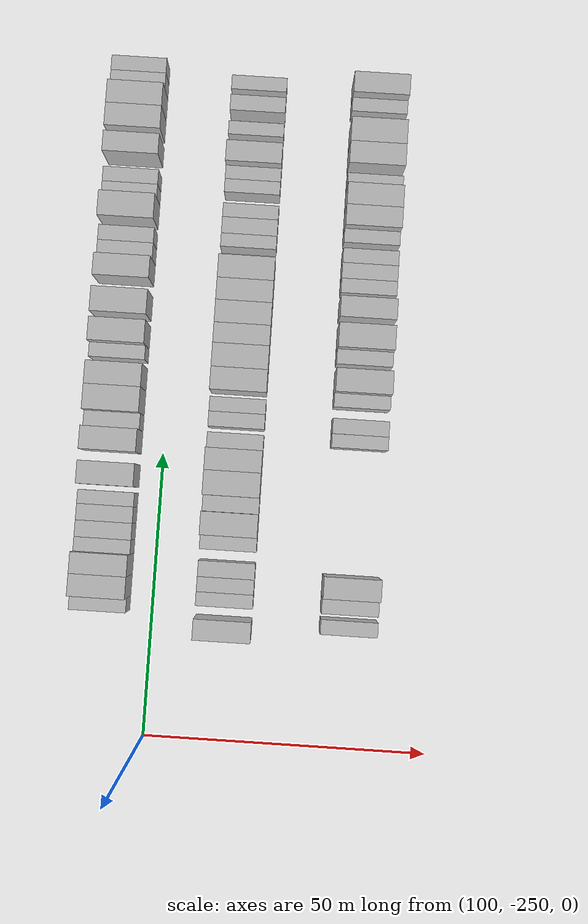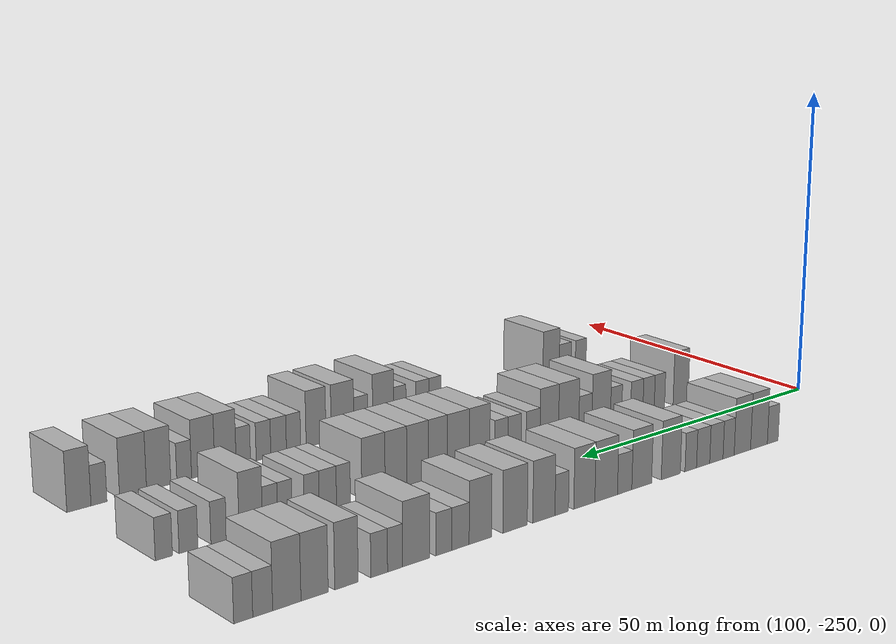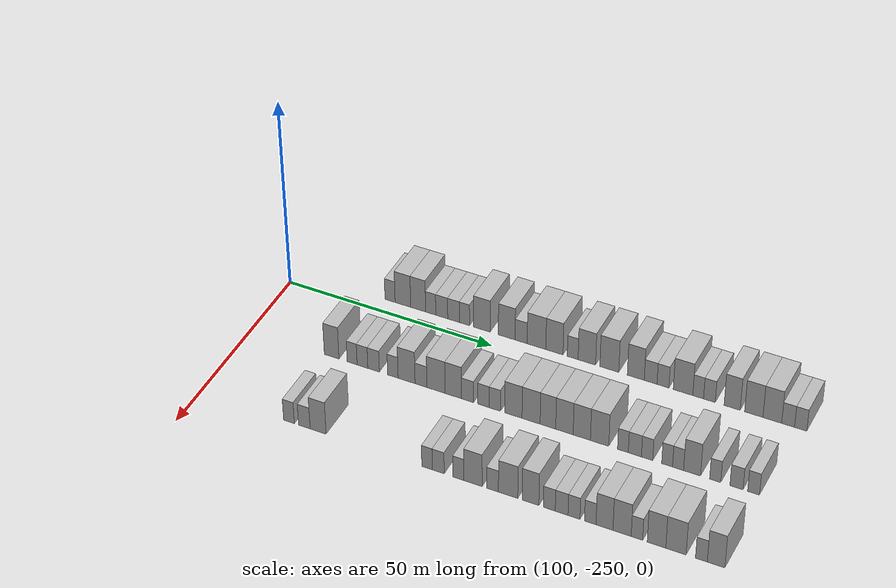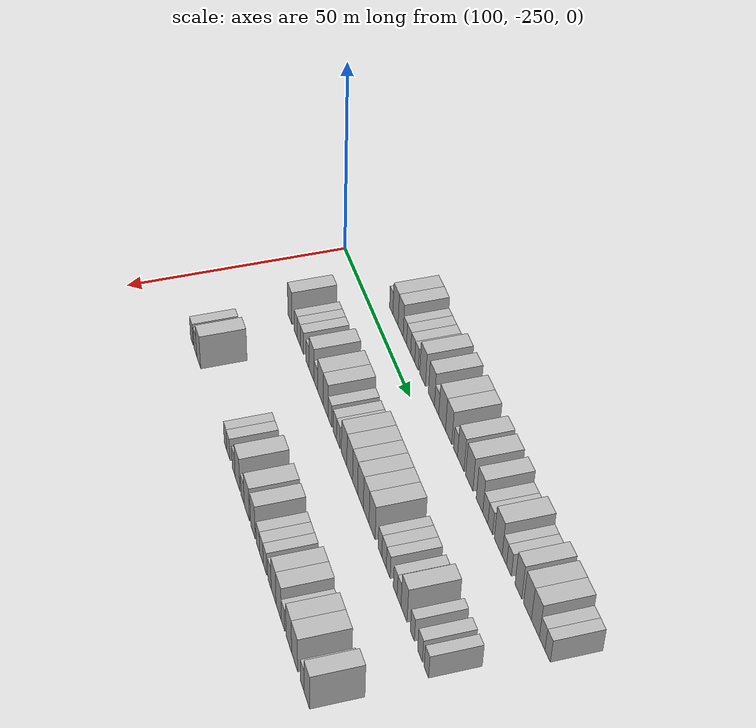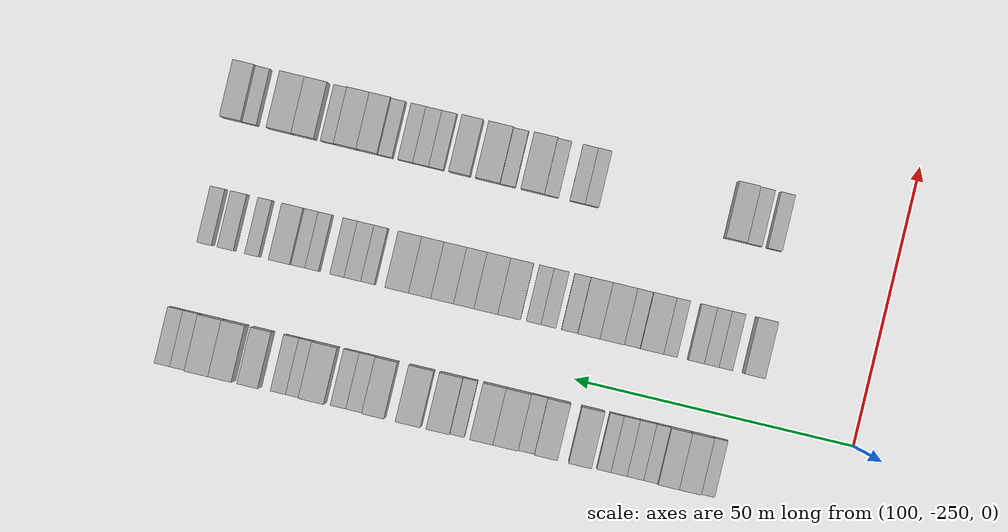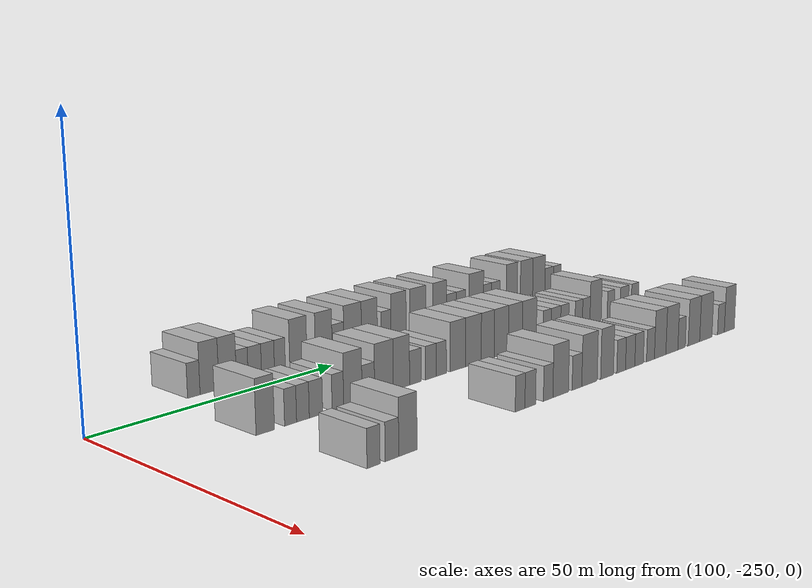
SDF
<sdf version="1.6">
 <world name="default">
  <model name="building_594">
   <static>1</static>
   <pose>91.0000 -226.9265 0 0.000000 0.000000 0.000000</pose>
   <link name="link">
    <pose>0 0 3.00 0 0 0</pose>
    <collision name="collision"><geometry><box><size>10.0000 2.5235 6.0000</size></box></geometry></collision>
    <visual name="visual">
     <cast_shadows>0</cast_shadows>
     <geometry><box><size>10.0000 2.5235 6.0000</size></box></geometry>
     <material>
      <script>
       <uri>model://HANNAS_wall/materials/scripts</uri>
       <uri>model://HANNAS_wall/materials/textures</uri>
       <name>vrc/HANNAS_wall</name>
      </script>
     </material>
    </visual>
   </link>
  </model>
  <model name="building_595">
   <static>1</static>
   <pose>91.0000 -223.7272 0 0.000000 0.000000 0.000000</pose>
   <link name="link">
    <pose>0 0 4.50 0 0 0</pose>
    <collision name="collision"><geometry><box><size>10.0000 3.8752 9.0000</size></box></geometry></collision>
    <visual name="visual">
     <cast_shadows>0</cast_shadows>
     <geometry><box><size>10.0000 3.8752 9.0000</size></box></geometry>
     <material>
      <script>
       <uri>model://HANNAS_wall/materials/scripts</uri>
       <uri>model://HANNAS_wall/materials/textures</uri>
       <name>vrc/HANNAS_wall</name>
      </script>
     </material>
    </visual>
   </link>
  </model>
  <model name="building_596">
   <static>1</static>
   <pose>91.0000 -219.9302 0 0.000000 0.000000 0.000000</pose>
   <link name="link">
    <pose>0 0 4.50 0 0 0</pose>
    <collision name="collision"><geometry><box><size>10.0000 3.7187 9.0000</size></box></geometry></collision>
    <visual name="visual">
     <cast_shadows>0</cast_shadows>
     <geometry><box><size>10.0000 3.7187 9.0000</size></box></geometry>
     <material>
      <script>
       <uri>model://HANNAS_wall/materials/scripts</uri>
       <uri>model://HANNAS_wall/materials/textures</uri>
       <name>vrc/HANNAS_wall</name>
      </script>
     </material>
    </visual>
   </link>
  </model>
  <model name="building_597">
   <static>1</static>
   <pose>91.0000 -216.8199 0 0.000000 0.000000 0.000000</pose>
   <link name="link">
    <pose>0 0 3.00 0 0 0</pose>
    <collision name="collision"><geometry><box><size>10.0000 2.5019 6.0000</size></box></geometry></collision>
    <visual name="visual">
     <cast_shadows>0</cast_shadows>
     <geometry><box><size>10.0000 2.5019 6.0000</size></box></geometry>
     <material>
      <script>
       <uri>model://HANNAS_wall/materials/scripts</uri>
       <uri>model://HANNAS_wall/materials/textures</uri>
       <name>vrc/HANNAS_wall</name>
      </script>
     </material>
    </visual>
   </link>
  </model>
  <model name="building_598">
   <static>1</static>
   <pose>91.0000 -214.1026 0 0.000000 0.000000 0.000000</pose>
   <link name="link">
    <pose>0 0 3.00 0 0 0</pose>
    <collision name="collision"><geometry><box><size>10.0000 2.9327 6.0000</size></box></geometry></collision>
    <visual name="visual">
     <cast_shadows>0</cast_shadows>
     <geometry><box><size>10.0000 2.9327 6.0000</size></box></geometry>
     <material>
      <script>
       <uri>model://HANNAS_wall/materials/scripts</uri>
       <uri>model://HANNAS_wall/materials/textures</uri>
       <name>vrc/HANNAS_wall</name>
      </script>
     </material>
    </visual>
   </link>
  </model>
  <model name="building_599">
   <static>1</static>
   <pose>91.0000 -211.1974 0 0.000000 0.000000 0.000000</pose>
   <link name="link">
    <pose>0 0 3.00 0 0 0</pose>
    <collision name="collision"><geometry><box><size>10.0000 2.8777 6.0000</size></box></geometry></collision>
    <visual name="visual">
     <cast_shadows>0</cast_shadows>
     <geometry><box><size>10.0000 2.8777 6.0000</size></box></geometry>
     <material>
      <script>
       <uri>model://HANNAS_wall/materials/scripts</uri>
       <uri>model://HANNAS_wall/materials/textures</uri>
       <name>vrc/HANNAS_wall</name>
      </script>
     </material>
    </visual>
   </link>
  </model>
  <model name="building_600">
   <static>1</static>
   <pose>91.0000 -208.5212 0 0.000000 0.000000 0.000000</pose>
   <link name="link">
    <pose>0 0 3.00 0 0 0</pose>
    <collision name="collision"><geometry><box><size>10.0000 2.4747 6.0000</size></box></geometry></collision>
    <visual name="visual">
     <cast_shadows>0</cast_shadows>
     <geometry><box><size>10.0000 2.4747 6.0000</size></box></geometry>
     <material>
      <script>
       <uri>model://HANNAS_wall/materials/scripts</uri>
       <uri>model://HANNAS_wall/materials/textures</uri>
       <name>vrc/HANNAS_wall</name>
      </script>
     </material>
    </visual>
   </link>
  </model>
  <model name="building_601">
   <static>1</static>
   <pose>91.0000 -204.2714 0 0.000000 0.000000 0.000000</pose>
   <link name="link">
    <pose>0 0 4.50 0 0 0</pose>
    <collision name="collision"><geometry><box><size>10.0000 4.0249 9.0000</size></box></geometry></collision>
    <visual name="visual">
     <cast_shadows>0</cast_shadows>
     <geometry><box><size>10.0000 4.0249 9.0000</size></box></geometry>
     <material>
      <script>
       <uri>model://HANNAS_wall/materials/scripts</uri>
       <uri>model://HANNAS_wall/materials/textures</uri>
       <name>vrc/HANNAS_wall</name>
      </script>
     </material>
    </visual>
   </link>
  </model>
  <model name="building_602">
   <static>1</static>
   <pose>91.0000 -198.2311 0 0.000000 0.000000 0.000000</pose>
   <link name="link">
    <pose>0 0 4.50 0 0 0</pose>
    <collision name="collision"><geometry><box><size>10.0000 4.0557 9.0000</size></box></geometry></collision>
    <visual name="visual">
     <cast_shadows>0</cast_shadows>
     <geometry><box><size>10.0000 4.0557 9.0000</size></box></geometry>
     <material>
      <script>
       <uri>model://HANNAS_wall/materials/scripts</uri>
       <uri>model://HANNAS_wall/materials/textures</uri>
       <name>vrc/HANNAS_wall</name>
      </script>
     </material>
    </visual>
   </link>
  </model>
  <model name="building_603">
   <static>1</static>
   <pose>91.0000 -194.7540 0 0.000000 0.000000 0.000000</pose>
   <link name="link">
    <pose>0 0 3.00 0 0 0</pose>
    <collision name="collision"><geometry><box><size>10.0000 2.8985 6.0000</size></box></geometry></collision>
    <visual name="visual">
     <cast_shadows>0</cast_shadows>
     <geometry><box><size>10.0000 2.8985 6.0000</size></box></geometry>
     <material>
      <script>
       <uri>model://HANNAS_wall/materials/scripts</uri>
       <uri>model://HANNAS_wall/materials/textures</uri>
       <name>vrc/HANNAS_wall</name>
      </script>
     </material>
    </visual>
   </link>
  </model>
  <model name="building_604">
   <static>1</static>
   <pose>91.0000 -191.0748 0 0.000000 0.000000 0.000000</pose>
   <link name="link">
    <pose>0 0 4.50 0 0 0</pose>
    <collision name="collision"><geometry><box><size>10.0000 4.4600 9.0000</size></box></geometry></collision>
    <visual name="visual">
     <cast_shadows>0</cast_shadows>
     <geometry><box><size>10.0000 4.4600 9.0000</size></box></geometry>
     <material>
      <script>
       <uri>model://HANNAS_wall/materials/scripts</uri>
       <uri>model://HANNAS_wall/materials/textures</uri>
       <name>vrc/HANNAS_wall</name>
      </script>
     </material>
    </visual>
   </link>
  </model>
  <model name="building_605">
   <static>1</static>
   <pose>91.0000 -186.7924 0 0.000000 0.000000 0.000000</pose>
   <link name="link">
    <pose>0 0 4.50 0 0 0</pose>
    <collision name="collision"><geometry><box><size>10.0000 4.1050 9.0000</size></box></geometry></collision>
    <visual name="visual">
     <cast_shadows>0</cast_shadows>
     <geometry><box><size>10.0000 4.1050 9.0000</size></box></geometry>
     <material>
      <script>
       <uri>model://HANNAS_wall/materials/scripts</uri>
       <uri>model://HANNAS_wall/materials/textures</uri>
       <name>vrc/HANNAS_wall</name>
      </script>
     </material>
    </visual>
   </link>
  </model>
  <model name="building_606">
   <static>1</static>
   <pose>91.0000 -182.4547 0 0.000000 0.000000 0.000000</pose>
   <link name="link">
    <pose>0 0 3.00 0 0 0</pose>
    <collision name="collision"><geometry><box><size>10.0000 2.5704 6.0000</size></box></geometry></collision>
    <visual name="visual">
     <cast_shadows>0</cast_shadows>
     <geometry><box><size>10.0000 2.5704 6.0000</size></box></geometry>
     <material>
      <script>
       <uri>model://HANNAS_wall/materials/scripts</uri>
       <uri>model://HANNAS_wall/materials/textures</uri>
       <name>vrc/HANNAS_wall</name>
      </script>
     </material>
    </visual>
   </link>
  </model>
  <model name="building_607">
   <static>1</static>
   <pose>91.0000 -179.0997 0 0.000000 0.000000 0.000000</pose>
   <link name="link">
    <pose>0 0 4.50 0 0 0</pose>
    <collision name="collision"><geometry><box><size>10.0000 4.1396 9.0000</size></box></geometry></collision>
    <visual name="visual">
     <cast_shadows>0</cast_shadows>
     <geometry><box><size>10.0000 4.1396 9.0000</size></box></geometry>
     <material>
      <script>
       <uri>model://HANNAS_wall/materials/scripts</uri>
       <uri>model://HANNAS_wall/materials/textures</uri>
       <name>vrc/HANNAS_wall</name>
      </script>
     </material>
    </visual>
   </link>
  </model>
  <model name="building_608">
   <static>1</static>
   <pose>91.0000 -173.8082 0 0.000000 0.000000 0.000000</pose>
   <link name="link">
    <pose>0 0 4.50 0 0 0</pose>
    <collision name="collision"><geometry><box><size>10.0000 4.4432 9.0000</size></box></geometry></collision>
    <visual name="visual">
     <cast_shadows>0</cast_shadows>
     <geometry><box><size>10.0000 4.4432 9.0000</size></box></geometry>
     <material>
      <script>
       <uri>model://HANNAS_wall/materials/scripts</uri>
       <uri>model://HANNAS_wall/materials/textures</uri>
       <name>vrc/HANNAS_wall</name>
      </script>
     </material>
    </visual>
   </link>
  </model>
  <model name="building_609">
   <static>1</static>
   <pose>91.0000 -167.6183 0 0.000000 0.000000 0.000000</pose>
   <link name="link">
    <pose>0 0 4.50 0 0 0</pose>
    <collision name="collision"><geometry><box><size>10.0000 3.9367 9.0000</size></box></geometry></collision>
    <visual name="visual">
     <cast_shadows>0</cast_shadows>
     <geometry><box><size>10.0000 3.9367 9.0000</size></box></geometry>
     <material>
      <script>
       <uri>model://HANNAS_wall/materials/scripts</uri>
       <uri>model://HANNAS_wall/materials/textures</uri>
       <name>vrc/HANNAS_wall</name>
      </script>
     </material>
    </visual>
   </link>
  </model>
  <model name="building_610">
   <static>1</static>
   <pose>91.0000 -164.1699 0 0.000000 0.000000 0.000000</pose>
   <link name="link">
    <pose>0 0 3.00 0 0 0</pose>
    <collision name="collision"><geometry><box><size>10.0000 2.9601 6.0000</size></box></geometry></collision>
    <visual name="visual">
     <cast_shadows>0</cast_shadows>
     <geometry><box><size>10.0000 2.9601 6.0000</size></box></geometry>
     <material>
      <script>
       <uri>model://HANNAS_wall/materials/scripts</uri>
       <uri>model://HANNAS_wall/materials/textures</uri>
       <name>vrc/HANNAS_wall</name>
      </script>
     </material>
    </visual>
   </link>
  </model>
  <model name="building_611">
   <static>1</static>
   <pose>91.0000 -161.3073 0 0.000000 0.000000 0.000000</pose>
   <link name="link">
    <pose>0 0 3.00 0 0 0</pose>
    <collision name="collision"><geometry><box><size>10.0000 2.7651 6.0000</size></box></geometry></collision>
    <visual name="visual">
     <cast_shadows>0</cast_shadows>
     <geometry><box><size>10.0000 2.7651 6.0000</size></box></geometry>
     <material>
      <script>
       <uri>model://HANNAS_wall/materials/scripts</uri>
       <uri>model://HANNAS_wall/materials/textures</uri>
       <name>vrc/HANNAS_wall</name>
      </script>
     </material>
    </visual>
   </link>
  </model>
  <model name="building_612">
   <static>1</static>
   <pose>91.0000 -156.6766 0 0.000000 0.000000 0.000000</pose>
   <link name="link">
    <pose>0 0 4.50 0 0 0</pose>
    <collision name="collision"><geometry><box><size>10.0000 4.4962 9.0000</size></box></geometry></collision>
    <visual name="visual">
     <cast_shadows>0</cast_shadows>
     <geometry><box><size>10.0000 4.4962 9.0000</size></box></geometry>
     <material>
      <script>
       <uri>model://HANNAS_wall/materials/scripts</uri>
       <uri>model://HANNAS_wall/materials/textures</uri>
       <name>vrc/HANNAS_wall</name>
      </script>
     </material>
    </visual>
   </link>
  </model>
  <model name="building_613">
   <static>1</static>
   <pose>91.0000 -153.2015 0 0.000000 0.000000 0.000000</pose>
   <link name="link">
    <pose>0 0 3.00 0 0 0</pose>
    <collision name="collision"><geometry><box><size>10.0000 2.4540 6.0000</size></box></geometry></collision>
    <visual name="visual">
     <cast_shadows>0</cast_shadows>
     <geometry><box><size>10.0000 2.4540 6.0000</size></box></geometry>
     <material>
      <script>
       <uri>model://HANNAS_wall/materials/scripts</uri>
       <uri>model://HANNAS_wall/materials/textures</uri>
       <name>vrc/HANNAS_wall</name>
      </script>
     </material>
    </visual>
   </link>
  </model>
  <model name="building_614">
   <static>1</static>
   <pose>91.0000 -150.6309 0 0.000000 0.000000 0.000000</pose>
   <link name="link">
    <pose>0 0 3.00 0 0 0</pose>
    <collision name="collision"><geometry><box><size>10.0000 2.6874 6.0000</size></box></geometry></collision>
    <visual name="visual">
     <cast_shadows>0</cast_shadows>
     <geometry><box><size>10.0000 2.6874 6.0000</size></box></geometry>
     <material>
      <script>
       <uri>model://HANNAS_wall/materials/scripts</uri>
       <uri>model://HANNAS_wall/materials/textures</uri>
       <name>vrc/HANNAS_wall</name>
      </script>
     </material>
    </visual>
   </link>
  </model>
  <model name="building_615">
   <static>1</static>
   <pose>91.0000 -145.4555 0 0.000000 0.000000 0.000000</pose>
   <link name="link">
    <pose>0 0 4.50 0 0 0</pose>
    <collision name="collision"><geometry><box><size>10.0000 3.6633 9.0000</size></box></geometry></collision>
    <visual name="visual">
     <cast_shadows>0</cast_shadows>
     <geometry><box><size>10.0000 3.6633 9.0000</size></box></geometry>
     <material>
      <script>
       <uri>model://HANNAS_wall/materials/scripts</uri>
       <uri>model://HANNAS_wall/materials/textures</uri>
       <name>vrc/HANNAS_wall</name>
      </script>
     </material>
    </visual>
   </link>
  </model>
  <model name="building_616">
   <static>1</static>
   <pose>91.0000 -140.5590 0 0.000000 0.000000 0.000000</pose>
   <link name="link">
    <pose>0 0 4.50 0 0 0</pose>
    <collision name="collision"><geometry><box><size>10.0000 4.1297 9.0000</size></box></geometry></collision>
    <visual name="visual">
     <cast_shadows>0</cast_shadows>
     <geometry><box><size>10.0000 4.1297 9.0000</size></box></geometry>
     <material>
      <script>
       <uri>model://HANNAS_wall/materials/scripts</uri>
       <uri>model://HANNAS_wall/materials/textures</uri>
       <name>vrc/HANNAS_wall</name>
      </script>
     </material>
    </visual>
   </link>
  </model>
  <model name="building_617">
   <static>1</static>
   <pose>91.0000 -136.3981 0 0.000000 0.000000 0.000000</pose>
   <link name="link">
    <pose>0 0 4.50 0 0 0</pose>
    <collision name="collision"><geometry><box><size>10.0000 4.1922 9.0000</size></box></geometry></collision>
    <visual name="visual">
     <cast_shadows>0</cast_shadows>
     <geometry><box><size>10.0000 4.1922 9.0000</size></box></geometry>
     <material>
      <script>
       <uri>model://HANNAS_wall/materials/scripts</uri>
       <uri>model://HANNAS_wall/materials/textures</uri>
       <name>vrc/HANNAS_wall</name>
      </script>
     </material>
    </visual>
   </link>
  </model>
  <model name="building_618">
   <static>1</static>
   <pose>91.0000 -132.8560 0 0.000000 0.000000 0.000000</pose>
   <link name="link">
    <pose>0 0 3.00 0 0 0</pose>
    <collision name="collision"><geometry><box><size>10.0000 2.8919 6.0000</size></box></geometry></collision>
    <visual name="visual">
     <cast_shadows>0</cast_shadows>
     <geometry><box><size>10.0000 2.8919 6.0000</size></box></geometry>
     <material>
      <script>
       <uri>model://HANNAS_wall/materials/scripts</uri>
       <uri>model://HANNAS_wall/materials/textures</uri>
       <name>vrc/HANNAS_wall</name>
      </script>
     </material>
    </visual>
   </link>
  </model>
  <model name="building_619">
   <static>1</static>
   <pose>91.0000 -130.0452 0 0.000000 0.000000 0.000000</pose>
   <link name="link">
    <pose>0 0 3.00 0 0 0</pose>
    <collision name="collision"><geometry><box><size>10.0000 2.7298 6.0000</size></box></geometry></collision>
    <visual name="visual">
     <cast_shadows>0</cast_shadows>
     <geometry><box><size>10.0000 2.7298 6.0000</size></box></geometry>
     <material>
      <script>
       <uri>model://HANNAS_wall/materials/scripts</uri>
       <uri>model://HANNAS_wall/materials/textures</uri>
       <name>vrc/HANNAS_wall</name>
      </script>
     </material>
    </visual>
   </link>
  </model>
  <model name="building_786">
   <static>1</static>
   <pose>113.0000 -229.9093 0 0.000000 0.000000 0.000000</pose>
   <link name="link">
    <pose>0 0 4.50 0 0 0</pose>
    <collision name="collision"><geometry><box><size>10.0000 3.6000 9.0000</size></box></geometry></collision>
    <visual name="visual">
     <cast_shadows>0</cast_shadows>
     <geometry><box><size>10.0000 3.6000 9.0000</size></box></geometry>
     <material>
      <script>
       <uri>model://HANNAS_wall/materials/scripts</uri>
       <uri>model://HANNAS_wall/materials/textures</uri>
       <name>vrc/HANNAS_wall</name>
      </script>
     </material>
    </visual>
   </link>
  </model>
  <model name="building_787">
   <static>1</static>
   <pose>113.0000 -224.8970 0 0.000000 0.000000 0.000000</pose>
   <link name="link">
    <pose>0 0 3.00 0 0 0</pose>
    <collision name="collision"><geometry><box><size>10.0000 2.4246 6.0000</size></box></geometry></collision>
    <visual name="visual">
     <cast_shadows>0</cast_shadows>
     <geometry><box><size>10.0000 2.4246 6.0000</size></box></geometry>
     <material>
      <script>
       <uri>model://HANNAS_wall/materials/scripts</uri>
       <uri>model://HANNAS_wall/materials/textures</uri>
       <name>vrc/HANNAS_wall</name>
      </script>
     </material>
    </visual>
   </link>
  </model>
  <model name="building_788">
   <static>1</static>
   <pose>113.0000 -222.3779 0 0.000000 0.000000 0.000000</pose>
   <link name="link">
    <pose>0 0 3.00 0 0 0</pose>
    <collision name="collision"><geometry><box><size>10.0000 2.6135 6.0000</size></box></geometry></collision>
    <visual name="visual">
     <cast_shadows>0</cast_shadows>
     <geometry><box><size>10.0000 2.6135 6.0000</size></box></geometry>
     <material>
      <script>
       <uri>model://HANNAS_wall/materials/scripts</uri>
       <uri>model://HANNAS_wall/materials/textures</uri>
       <name>vrc/HANNAS_wall</name>
      </script>
     </material>
    </visual>
   </link>
  </model>
  <model name="building_789">
   <static>1</static>
   <pose>113.0000 -219.6679 0 0.000000 0.000000 0.000000</pose>
   <link name="link">
    <pose>0 0 3.00 0 0 0</pose>
    <collision name="collision"><geometry><box><size>10.0000 2.8065 6.0000</size></box></geometry></collision>
    <visual name="visual">
     <cast_shadows>0</cast_shadows>
     <geometry><box><size>10.0000 2.8065 6.0000</size></box></geometry>
     <material>
      <script>
       <uri>model://HANNAS_wall/materials/scripts</uri>
       <uri>model://HANNAS_wall/materials/textures</uri>
       <name>vrc/HANNAS_wall</name>
      </script>
     </material>
    </visual>
   </link>
  </model>
  <model name="building_790">
   <static>1</static>
   <pose>113.0000 -215.0033 0 0.000000 0.000000 0.000000</pose>
   <link name="link">
    <pose>0 0 3.00 0 0 0</pose>
    <collision name="collision"><geometry><box><size>10.0000 2.5228 6.0000</size></box></geometry></collision>
    <visual name="visual">
     <cast_shadows>0</cast_shadows>
     <geometry><box><size>10.0000 2.5228 6.0000</size></box></geometry>
     <material>
      <script>
       <uri>model://HANNAS_wall/materials/scripts</uri>
       <uri>model://HANNAS_wall/materials/textures</uri>
       <name>vrc/HANNAS_wall</name>
      </script>
     </material>
    </visual>
   </link>
  </model>
  <model name="building_791">
   <static>1</static>
   <pose>113.0000 -211.7028 0 0.000000 0.000000 0.000000</pose>
   <link name="link">
    <pose>0 0 4.50 0 0 0</pose>
    <collision name="collision"><geometry><box><size>10.0000 4.0781 9.0000</size></box></geometry></collision>
    <visual name="visual">
     <cast_shadows>0</cast_shadows>
     <geometry><box><size>10.0000 4.0781 9.0000</size></box></geometry>
     <material>
      <script>
       <uri>model://HANNAS_wall/materials/scripts</uri>
       <uri>model://HANNAS_wall/materials/textures</uri>
       <name>vrc/HANNAS_wall</name>
      </script>
     </material>
    </visual>
   </link>
  </model>
  <model name="building_792">
   <static>1</static>
   <pose>113.0000 -208.2397 0 0.000000 0.000000 0.000000</pose>
   <link name="link">
    <pose>0 0 3.00 0 0 0</pose>
    <collision name="collision"><geometry><box><size>10.0000 2.8479 6.0000</size></box></geometry></collision>
    <visual name="visual">
     <cast_shadows>0</cast_shadows>
     <geometry><box><size>10.0000 2.8479 6.0000</size></box></geometry>
     <material>
      <script>
       <uri>model://HANNAS_wall/materials/scripts</uri>
       <uri>model://HANNAS_wall/materials/textures</uri>
       <name>vrc/HANNAS_wall</name>
      </script>
     </material>
    </visual>
   </link>
  </model>
  <model name="building_793">
   <static>1</static>
   <pose>113.0000 -204.6524 0 0.000000 0.000000 0.000000</pose>
   <link name="link">
    <pose>0 0 4.50 0 0 0</pose>
    <collision name="collision"><geometry><box><size>10.0000 4.3269 9.0000</size></box></geometry></collision>
    <visual name="visual">
     <cast_shadows>0</cast_shadows>
     <geometry><box><size>10.0000 4.3269 9.0000</size></box></geometry>
     <material>
      <script>
       <uri>model://HANNAS_wall/materials/scripts</uri>
       <uri>model://HANNAS_wall/materials/textures</uri>
       <name>vrc/HANNAS_wall</name>
      </script>
     </material>
    </visual>
   </link>
  </model>
  <model name="building_794">
   <static>1</static>
   <pose>113.0000 -200.5381 0 0.000000 0.000000 0.000000</pose>
   <link name="link">
    <pose>0 0 4.50 0 0 0</pose>
    <collision name="collision"><geometry><box><size>10.0000 3.9016 9.0000</size></box></geometry></collision>
    <visual name="visual">
     <cast_shadows>0</cast_shadows>
     <geometry><box><size>10.0000 3.9016 9.0000</size></box></geometry>
     <material>
      <script>
       <uri>model://HANNAS_wall/materials/scripts</uri>
       <uri>model://HANNAS_wall/materials/textures</uri>
       <name>vrc/HANNAS_wall</name>
      </script>
     </material>
    </visual>
   </link>
  </model>
  <model name="building_795">
   <static>1</static>
   <pose>113.0000 -197.1588 0 0.000000 0.000000 0.000000</pose>
   <link name="link">
    <pose>0 0 3.00 0 0 0</pose>
    <collision name="collision"><geometry><box><size>10.0000 2.8572 6.0000</size></box></geometry></collision>
    <visual name="visual">
     <cast_shadows>0</cast_shadows>
     <geometry><box><size>10.0000 2.8572 6.0000</size></box></geometry>
     <material>
      <script>
       <uri>model://HANNAS_wall/materials/scripts</uri>
       <uri>model://HANNAS_wall/materials/textures</uri>
       <name>vrc/HANNAS_wall</name>
      </script>
     </material>
    </visual>
   </link>
  </model>
  <model name="building_796">
   <static>1</static>
   <pose>113.0000 -193.3931 0 0.000000 0.000000 0.000000</pose>
   <link name="link">
    <pose>0 0 3.00 0 0 0</pose>
    <collision name="collision"><geometry><box><size>10.0000 2.6741 6.0000</size></box></geometry></collision>
    <visual name="visual">
     <cast_shadows>0</cast_shadows>
     <geometry><box><size>10.0000 2.6741 6.0000</size></box></geometry>
     <material>
      <script>
       <uri>model://HANNAS_wall/materials/scripts</uri>
       <uri>model://HANNAS_wall/materials/textures</uri>
       <name>vrc/HANNAS_wall</name>
      </script>
     </material>
    </visual>
   </link>
  </model>
  <model name="building_797">
   <static>1</static>
   <pose>113.0000 -190.7468 0 0.000000 0.000000 0.000000</pose>
   <link name="link">
    <pose>0 0 3.00 0 0 0</pose>
    <collision name="collision"><geometry><box><size>10.0000 2.6184 6.0000</size></box></geometry></collision>
    <visual name="visual">
     <cast_shadows>0</cast_shadows>
     <geometry><box><size>10.0000 2.6184 6.0000</size></box></geometry>
     <material>
      <script>
       <uri>model://HANNAS_wall/materials/scripts</uri>
       <uri>model://HANNAS_wall/materials/textures</uri>
       <name>vrc/HANNAS_wall</name>
      </script>
     </material>
    </visual>
   </link>
  </model>
  <model name="building_798">
   <static>1</static>
   <pose>113.0000 -186.4228 0 0.000000 0.000000 0.000000</pose>
   <link name="link">
    <pose>0 0 4.50 0 0 0</pose>
    <collision name="collision"><geometry><box><size>10.0000 4.0296 9.0000</size></box></geometry></collision>
    <visual name="visual">
     <cast_shadows>0</cast_shadows>
     <geometry><box><size>10.0000 4.0296 9.0000</size></box></geometry>
     <material>
      <script>
       <uri>model://HANNAS_wall/materials/scripts</uri>
       <uri>model://HANNAS_wall/materials/textures</uri>
       <name>vrc/HANNAS_wall</name>
      </script>
     </material>
    </visual>
   </link>
  </model>
  <model name="building_799">
   <static>1</static>
   <pose>113.0000 -182.3094 0 0.000000 0.000000 0.000000</pose>
   <link name="link">
    <pose>0 0 4.50 0 0 0</pose>
    <collision name="collision"><geometry><box><size>10.0000 4.1972 9.0000</size></box></geometry></collision>
    <visual name="visual">
     <cast_shadows>0</cast_shadows>
     <geometry><box><size>10.0000 4.1972 9.0000</size></box></geometry>
     <material>
      <script>
       <uri>model://HANNAS_wall/materials/scripts</uri>
       <uri>model://HANNAS_wall/materials/textures</uri>
       <name>vrc/HANNAS_wall</name>
      </script>
     </material>
    </visual>
   </link>
  </model>
  <model name="building_800">
   <static>1</static>
   <pose>113.0000 -178.4084 0 0.000000 0.000000 0.000000</pose>
   <link name="link">
    <pose>0 0 4.50 0 0 0</pose>
    <collision name="collision"><geometry><box><size>10.0000 3.6048 9.0000</size></box></geometry></collision>
    <visual name="visual">
     <cast_shadows>0</cast_shadows>
     <geometry><box><size>10.0000 3.6048 9.0000</size></box></geometry>
     <material>
      <script>
       <uri>model://HANNAS_wall/materials/scripts</uri>
       <uri>model://HANNAS_wall/materials/textures</uri>
       <name>vrc/HANNAS_wall</name>
      </script>
     </material>
    </visual>
   </link>
  </model>
  <model name="building_801">
   <static>1</static>
   <pose>113.0000 -174.5998 0 0.000000 0.000000 0.000000</pose>
   <link name="link">
    <pose>0 0 4.50 0 0 0</pose>
    <collision name="collision"><geometry><box><size>10.0000 4.0122 9.0000</size></box></geometry></collision>
    <visual name="visual">
     <cast_shadows>0</cast_shadows>
     <geometry><box><size>10.0000 4.0122 9.0000</size></box></geometry>
     <material>
      <script>
       <uri>model://HANNAS_wall/materials/scripts</uri>
       <uri>model://HANNAS_wall/materials/textures</uri>
       <name>vrc/HANNAS_wall</name>
      </script>
     </material>
    </visual>
   </link>
  </model>
  <model name="building_802">
   <static>1</static>
   <pose>113.0000 -170.6229 0 0.000000 0.000000 0.000000</pose>
   <link name="link">
    <pose>0 0 4.50 0 0 0</pose>
    <collision name="collision"><geometry><box><size>10.0000 3.9417 9.0000</size></box></geometry></collision>
    <visual name="visual">
     <cast_shadows>0</cast_shadows>
     <geometry><box><size>10.0000 3.9417 9.0000</size></box></geometry>
     <material>
      <script>
       <uri>model://HANNAS_wall/materials/scripts</uri>
       <uri>model://HANNAS_wall/materials/textures</uri>
       <name>vrc/HANNAS_wall</name>
      </script>
     </material>
    </visual>
   </link>
  </model>
  <model name="building_803">
   <static>1</static>
   <pose>113.0000 -166.5668 0 0.000000 0.000000 0.000000</pose>
   <link name="link">
    <pose>0 0 4.50 0 0 0</pose>
    <collision name="collision"><geometry><box><size>10.0000 4.1704 9.0000</size></box></geometry></collision>
    <visual name="visual">
     <cast_shadows>0</cast_shadows>
     <geometry><box><size>10.0000 4.1704 9.0000</size></box></geometry>
     <material>
      <script>
       <uri>model://HANNAS_wall/materials/scripts</uri>
       <uri>model://HANNAS_wall/materials/textures</uri>
       <name>vrc/HANNAS_wall</name>
      </script>
     </material>
    </visual>
   </link>
  </model>
  <model name="building_804">
   <static>1</static>
   <pose>113.0000 -161.2691 0 0.000000 0.000000 0.000000</pose>
   <link name="link">
    <pose>0 0 3.00 0 0 0</pose>
    <collision name="collision"><geometry><box><size>10.0000 2.4250 6.0000</size></box></geometry></collision>
    <visual name="visual">
     <cast_shadows>0</cast_shadows>
     <geometry><box><size>10.0000 2.4250 6.0000</size></box></geometry>
     <material>
      <script>
       <uri>model://HANNAS_wall/materials/scripts</uri>
       <uri>model://HANNAS_wall/materials/textures</uri>
       <name>vrc/HANNAS_wall</name>
      </script>
     </material>
    </visual>
   </link>
  </model>
  <model name="building_805">
   <static>1</static>
   <pose>113.0000 -158.5749 0 0.000000 0.000000 0.000000</pose>
   <link name="link">
    <pose>0 0 3.00 0 0 0</pose>
    <collision name="collision"><geometry><box><size>10.0000 2.9633 6.0000</size></box></geometry></collision>
    <visual name="visual">
     <cast_shadows>0</cast_shadows>
     <geometry><box><size>10.0000 2.9633 6.0000</size></box></geometry>
     <material>
      <script>
       <uri>model://HANNAS_wall/materials/scripts</uri>
       <uri>model://HANNAS_wall/materials/textures</uri>
       <name>vrc/HANNAS_wall</name>
      </script>
     </material>
    </visual>
   </link>
  </model>
  <model name="building_806">
   <static>1</static>
   <pose>113.0000 -155.8235 0 0.000000 0.000000 0.000000</pose>
   <link name="link">
    <pose>0 0 3.00 0 0 0</pose>
    <collision name="collision"><geometry><box><size>10.0000 2.5396 6.0000</size></box></geometry></collision>
    <visual name="visual">
     <cast_shadows>0</cast_shadows>
     <geometry><box><size>10.0000 2.5396 6.0000</size></box></geometry>
     <material>
      <script>
       <uri>model://HANNAS_wall/materials/scripts</uri>
       <uri>model://HANNAS_wall/materials/textures</uri>
       <name>vrc/HANNAS_wall</name>
      </script>
     </material>
    </visual>
   </link>
  </model>
  <model name="building_807">
   <static>1</static>
   <pose>113.0000 -151.3454 0 0.000000 0.000000 0.000000</pose>
   <link name="link">
    <pose>0 0 3.00 0 0 0</pose>
    <collision name="collision"><geometry><box><size>10.0000 2.4166 6.0000</size></box></geometry></collision>
    <visual name="visual">
     <cast_shadows>0</cast_shadows>
     <geometry><box><size>10.0000 2.4166 6.0000</size></box></geometry>
     <material>
      <script>
       <uri>model://HANNAS_wall/materials/scripts</uri>
       <uri>model://HANNAS_wall/materials/textures</uri>
       <name>vrc/HANNAS_wall</name>
      </script>
     </material>
    </visual>
   </link>
  </model>
  <model name="building_808">
   <static>1</static>
   <pose>113.0000 -148.9045 0 0.000000 0.000000 0.000000</pose>
   <link name="link">
    <pose>0 0 3.00 0 0 0</pose>
    <collision name="collision"><geometry><box><size>10.0000 2.4651 6.0000</size></box></geometry></collision>
    <visual name="visual">
     <cast_shadows>0</cast_shadows>
     <geometry><box><size>10.0000 2.4651 6.0000</size></box></geometry>
     <material>
      <script>
       <uri>model://HANNAS_wall/materials/scripts</uri>
       <uri>model://HANNAS_wall/materials/textures</uri>
       <name>vrc/HANNAS_wall</name>
      </script>
     </material>
    </visual>
   </link>
  </model>
  <model name="building_809">
   <static>1</static>
   <pose>113.0000 -145.7889 0 0.000000 0.000000 0.000000</pose>
   <link name="link">
    <pose>0 0 4.50 0 0 0</pose>
    <collision name="collision"><geometry><box><size>10.0000 3.7661 9.0000</size></box></geometry></collision>
    <visual name="visual">
     <cast_shadows>0</cast_shadows>
     <geometry><box><size>10.0000 3.7661 9.0000</size></box></geometry>
     <material>
      <script>
       <uri>model://HANNAS_wall/materials/scripts</uri>
       <uri>model://HANNAS_wall/materials/textures</uri>
       <name>vrc/HANNAS_wall</name>
      </script>
     </material>
    </visual>
   </link>
  </model>
  <model name="building_810">
   <static>1</static>
   <pose>113.0000 -140.6743 0 0.000000 0.000000 0.000000</pose>
   <link name="link">
    <pose>0 0 3.00 0 0 0</pose>
    <collision name="collision"><geometry><box><size>10.0000 2.4631 6.0000</size></box></geometry></collision>
    <visual name="visual">
     <cast_shadows>0</cast_shadows>
     <geometry><box><size>10.0000 2.4631 6.0000</size></box></geometry>
     <material>
      <script>
       <uri>model://HANNAS_wall/materials/scripts</uri>
       <uri>model://HANNAS_wall/materials/textures</uri>
       <name>vrc/HANNAS_wall</name>
      </script>
     </material>
    </visual>
   </link>
  </model>
  <model name="building_811">
   <static>1</static>
   <pose>113.0000 -135.9996 0 0.000000 0.000000 0.000000</pose>
   <link name="link">
    <pose>0 0 3.00 0 0 0</pose>
    <collision name="collision"><geometry><box><size>10.0000 2.8862 6.0000</size></box></geometry></collision>
    <visual name="visual">
     <cast_shadows>0</cast_shadows>
     <geometry><box><size>10.0000 2.8862 6.0000</size></box></geometry>
     <material>
      <script>
       <uri>model://HANNAS_wall/materials/scripts</uri>
       <uri>model://HANNAS_wall/materials/textures</uri>
       <name>vrc/HANNAS_wall</name>
      </script>
     </material>
    </visual>
   </link>
  </model>
  <model name="building_812">
   <static>1</static>
   <pose>113.0000 -132.2619 0 0.000000 0.000000 0.000000</pose>
   <link name="link">
    <pose>0 0 3.00 0 0 0</pose>
    <collision name="collision"><geometry><box><size>10.0000 2.5891 6.0000</size></box></geometry></collision>
    <visual name="visual">
     <cast_shadows>0</cast_shadows>
     <geometry><box><size>10.0000 2.5891 6.0000</size></box></geometry>
     <material>
      <script>
       <uri>model://HANNAS_wall/materials/scripts</uri>
       <uri>model://HANNAS_wall/materials/textures</uri>
       <name>vrc/HANNAS_wall</name>
      </script>
     </material>
    </visual>
   </link>
  </model>
  <model name="building_982">
   <static>1</static>
   <pose>135.0000 -228.3594 0 0.000000 0.000000 0.000000</pose>
   <link name="link">
    <pose>0 0 3.00 0 0 0</pose>
    <collision name="collision"><geometry><box><size>10.0000 2.5737 6.0000</size></box></geometry></collision>
    <visual name="visual">
     <cast_shadows>0</cast_shadows>
     <geometry><box><size>10.0000 2.5737 6.0000</size></box></geometry>
     <material>
      <script>
       <uri>model://HANNAS_wall/materials/scripts</uri>
       <uri>model://HANNAS_wall/materials/textures</uri>
       <name>vrc/HANNAS_wall</name>
      </script>
     </material>
    </visual>
   </link>
  </model>
  <model name="building_983">
   <static>1</static>
   <pose>135.0000 -224.6853 0 0.000000 0.000000 0.000000</pose>
   <link name="link">
    <pose>0 0 3.00 0 0 0</pose>
    <collision name="collision"><geometry><box><size>10.0000 2.7745 6.0000</size></box></geometry></collision>
    <visual name="visual">
     <cast_shadows>0</cast_shadows>
     <geometry><box><size>10.0000 2.7745 6.0000</size></box></geometry>
     <material>
      <script>
       <uri>model://HANNAS_wall/materials/scripts</uri>
       <uri>model://HANNAS_wall/materials/textures</uri>
       <name>vrc/HANNAS_wall</name>
      </script>
     </material>
    </visual>
   </link>
  </model>
  <model name="building_984">
   <static>1</static>
   <pose>135.0000 -221.3986 0 0.000000 0.000000 0.000000</pose>
   <link name="link">
    <pose>0 0 4.50 0 0 0</pose>
    <collision name="collision"><geometry><box><size>10.0000 3.7989 9.0000</size></box></geometry></collision>
    <visual name="visual">
     <cast_shadows>0</cast_shadows>
     <geometry><box><size>10.0000 3.7989 9.0000</size></box></geometry>
     <material>
      <script>
       <uri>model://HANNAS_wall/materials/scripts</uri>
       <uri>model://HANNAS_wall/materials/textures</uri>
       <name>vrc/HANNAS_wall</name>
      </script>
     </material>
    </visual>
   </link>
  </model>
  <model name="building_985">
   <static>1</static>
   <pose>135.0000 -195.8586 0 0.000000 0.000000 0.000000</pose>
   <link name="link">
    <pose>0 0 3.00 0 0 0</pose>
    <collision name="collision"><geometry><box><size>10.0000 2.4270 6.0000</size></box></geometry></collision>
    <visual name="visual">
     <cast_shadows>0</cast_shadows>
     <geometry><box><size>10.0000 2.4270 6.0000</size></box></geometry>
     <material>
      <script>
       <uri>model://HANNAS_wall/materials/scripts</uri>
       <uri>model://HANNAS_wall/materials/textures</uri>
       <name>vrc/HANNAS_wall</name>
      </script>
     </material>
    </visual>
   </link>
  </model>
  <model name="building_986">
   <static>1</static>
   <pose>135.0000 -193.2785 0 0.000000 0.000000 0.000000</pose>
   <link name="link">
    <pose>0 0 3.00 0 0 0</pose>
    <collision name="collision"><geometry><box><size>10.0000 2.7331 6.0000</size></box></geometry></collision>
    <visual name="visual">
     <cast_shadows>0</cast_shadows>
     <geometry><box><size>10.0000 2.7331 6.0000</size></box></geometry>
     <material>
      <script>
       <uri>model://HANNAS_wall/materials/scripts</uri>
       <uri>model://HANNAS_wall/materials/textures</uri>
       <name>vrc/HANNAS_wall</name>
      </script>
     </material>
    </visual>
   </link>
  </model>
  <model name="building_987">
   <static>1</static>
   <pose>135.0000 -188.6662 0 0.000000 0.000000 0.000000</pose>
   <link name="link">
    <pose>0 0 3.00 0 0 0</pose>
    <collision name="collision"><geometry><box><size>10.0000 2.4917 6.0000</size></box></geometry></collision>
    <visual name="visual">
     <cast_shadows>0</cast_shadows>
     <geometry><box><size>10.0000 2.4917 6.0000</size></box></geometry>
     <material>
      <script>
       <uri>model://HANNAS_wall/materials/scripts</uri>
       <uri>model://HANNAS_wall/materials/textures</uri>
       <name>vrc/HANNAS_wall</name>
      </script>
     </material>
    </visual>
   </link>
  </model>
  <model name="building_988">
   <static>1</static>
   <pose>135.0000 -185.3307 0 0.000000 0.000000 0.000000</pose>
   <link name="link">
    <pose>0 0 4.50 0 0 0</pose>
    <collision name="collision"><geometry><box><size>10.0000 4.1793 9.0000</size></box></geometry></collision>
    <visual name="visual">
     <cast_shadows>0</cast_shadows>
     <geometry><box><size>10.0000 4.1793 9.0000</size></box></geometry>
     <material>
      <script>
       <uri>model://HANNAS_wall/materials/scripts</uri>
       <uri>model://HANNAS_wall/materials/textures</uri>
       <name>vrc/HANNAS_wall</name>
      </script>
     </material>
    </visual>
   </link>
  </model>
  <model name="building_989">
   <static>1</static>
   <pose>135.0000 -180.9003 0 0.000000 0.000000 0.000000</pose>
   <link name="link">
    <pose>0 0 3.00 0 0 0</pose>
    <collision name="collision"><geometry><box><size>10.0000 2.6815 6.0000</size></box></geometry></collision>
    <visual name="visual">
     <cast_shadows>0</cast_shadows>
     <geometry><box><size>10.0000 2.6815 6.0000</size></box></geometry>
     <material>
      <script>
       <uri>model://HANNAS_wall/materials/scripts</uri>
       <uri>model://HANNAS_wall/materials/textures</uri>
       <name>vrc/HANNAS_wall</name>
      </script>
     </material>
    </visual>
   </link>
  </model>
  <model name="building_990">
   <static>1</static>
   <pose>135.0000 -177.3799 0 0.000000 0.000000 0.000000</pose>
   <link name="link">
    <pose>0 0 4.50 0 0 0</pose>
    <collision name="collision"><geometry><box><size>10.0000 4.3592 9.0000</size></box></geometry></collision>
    <visual name="visual">
     <cast_shadows>0</cast_shadows>
     <geometry><box><size>10.0000 4.3592 9.0000</size></box></geometry>
     <material>
      <script>
       <uri>model://HANNAS_wall/materials/scripts</uri>
       <uri>model://HANNAS_wall/materials/textures</uri>
       <name>vrc/HANNAS_wall</name>
      </script>
     </material>
    </visual>
   </link>
  </model>
  <model name="building_991">
   <static>1</static>
   <pose>135.0000 -172.3312 0 0.000000 0.000000 0.000000</pose>
   <link name="link">
    <pose>0 0 4.50 0 0 0</pose>
    <collision name="collision"><geometry><box><size>10.0000 3.7382 9.0000</size></box></geometry></collision>
    <visual name="visual">
     <cast_shadows>0</cast_shadows>
     <geometry><box><size>10.0000 3.7382 9.0000</size></box></geometry>
     <material>
      <script>
       <uri>model://HANNAS_wall/materials/scripts</uri>
       <uri>model://HANNAS_wall/materials/textures</uri>
       <name>vrc/HANNAS_wall</name>
      </script>
     </material>
    </visual>
   </link>
  </model>
  <model name="building_992">
   <static>1</static>
   <pose>135.0000 -168.1456 0 0.000000 0.000000 0.000000</pose>
   <link name="link">
    <pose>0 0 3.00 0 0 0</pose>
    <collision name="collision"><geometry><box><size>10.0000 2.6331 6.0000</size></box></geometry></collision>
    <visual name="visual">
     <cast_shadows>0</cast_shadows>
     <geometry><box><size>10.0000 2.6331 6.0000</size></box></geometry>
     <material>
      <script>
       <uri>model://HANNAS_wall/materials/scripts</uri>
       <uri>model://HANNAS_wall/materials/textures</uri>
       <name>vrc/HANNAS_wall</name>
      </script>
     </material>
    </visual>
   </link>
  </model>
  <model name="building_993">
   <static>1</static>
   <pose>135.0000 -165.4086 0 0.000000 0.000000 0.000000</pose>
   <link name="link">
    <pose>0 0 3.00 0 0 0</pose>
    <collision name="collision"><geometry><box><size>10.0000 2.8407 6.0000</size></box></geometry></collision>
    <visual name="visual">
     <cast_shadows>0</cast_shadows>
     <geometry><box><size>10.0000 2.8407 6.0000</size></box></geometry>
     <material>
      <script>
       <uri>model://HANNAS_wall/materials/scripts</uri>
       <uri>model://HANNAS_wall/materials/textures</uri>
       <name>vrc/HANNAS_wall</name>
      </script>
     </material>
    </visual>
   </link>
  </model>
  <model name="building_994">
   <static>1</static>
   <pose>135.0000 -162.6641 0 0.000000 0.000000 0.000000</pose>
   <link name="link">
    <pose>0 0 3.00 0 0 0</pose>
    <collision name="collision"><geometry><box><size>10.0000 2.6483 6.0000</size></box></geometry></collision>
    <visual name="visual">
     <cast_shadows>0</cast_shadows>
     <geometry><box><size>10.0000 2.6483 6.0000</size></box></geometry>
     <material>
      <script>
       <uri>model://HANNAS_wall/materials/scripts</uri>
       <uri>model://HANNAS_wall/materials/textures</uri>
       <name>vrc/HANNAS_wall</name>
      </script>
     </material>
    </visual>
   </link>
  </model>
  <model name="building_995">
   <static>1</static>
   <pose>135.0000 -159.0765 0 0.000000 0.000000 0.000000</pose>
   <link name="link">
    <pose>0 0 3.00 0 0 0</pose>
    <collision name="collision"><geometry><box><size>10.0000 2.5269 6.0000</size></box></geometry></collision>
    <visual name="visual">
     <cast_shadows>0</cast_shadows>
     <geometry><box><size>10.0000 2.5269 6.0000</size></box></geometry>
     <material>
      <script>
       <uri>model://HANNAS_wall/materials/scripts</uri>
       <uri>model://HANNAS_wall/materials/textures</uri>
       <name>vrc/HANNAS_wall</name>
      </script>
     </material>
    </visual>
   </link>
  </model>
  <model name="building_996">
   <static>1</static>
   <pose>135.0000 -155.9540 0 0.000000 0.000000 0.000000</pose>
   <link name="link">
    <pose>0 0 4.50 0 0 0</pose>
    <collision name="collision"><geometry><box><size>10.0000 3.7182 9.0000</size></box></geometry></collision>
    <visual name="visual">
     <cast_shadows>0</cast_shadows>
     <geometry><box><size>10.0000 3.7182 9.0000</size></box></geometry>
     <material>
      <script>
       <uri>model://HANNAS_wall/materials/scripts</uri>
       <uri>model://HANNAS_wall/materials/textures</uri>
       <name>vrc/HANNAS_wall</name>
      </script>
     </material>
    </visual>
   </link>
  </model>
  <model name="building_997">
   <static>1</static>
   <pose>135.0000 -152.1035 0 0.000000 0.000000 0.000000</pose>
   <link name="link">
    <pose>0 0 4.50 0 0 0</pose>
    <collision name="collision"><geometry><box><size>10.0000 3.9828 9.0000</size></box></geometry></collision>
    <visual name="visual">
     <cast_shadows>0</cast_shadows>
     <geometry><box><size>10.0000 3.9828 9.0000</size></box></geometry>
     <material>
      <script>
       <uri>model://HANNAS_wall/materials/scripts</uri>
       <uri>model://HANNAS_wall/materials/textures</uri>
       <name>vrc/HANNAS_wall</name>
      </script>
     </material>
    </visual>
   </link>
  </model>
  <model name="building_998">
   <static>1</static>
   <pose>135.0000 -148.8663 0 0.000000 0.000000 0.000000</pose>
   <link name="link">
    <pose>0 0 3.00 0 0 0</pose>
    <collision name="collision"><geometry><box><size>10.0000 2.4916 6.0000</size></box></geometry></collision>
    <visual name="visual">
     <cast_shadows>0</cast_shadows>
     <geometry><box><size>10.0000 2.4916 6.0000</size></box></geometry>
     <material>
      <script>
       <uri>model://HANNAS_wall/materials/scripts</uri>
       <uri>model://HANNAS_wall/materials/textures</uri>
       <name>vrc/HANNAS_wall</name>
      </script>
     </material>
    </visual>
   </link>
  </model>
  <model name="building_999">
   <static>1</static>
   <pose>135.0000 -144.6174 0 0.000000 0.000000 0.000000</pose>
   <link name="link">
    <pose>0 0 4.50 0 0 0</pose>
    <collision name="collision"><geometry><box><size>10.0000 4.0062 9.0000</size></box></geometry></collision>
    <visual name="visual">
     <cast_shadows>0</cast_shadows>
     <geometry><box><size>10.0000 4.0062 9.0000</size></box></geometry>
     <material>
      <script>
       <uri>model://HANNAS_wall/materials/scripts</uri>
       <uri>model://HANNAS_wall/materials/textures</uri>
       <name>vrc/HANNAS_wall</name>
      </script>
     </material>
    </visual>
   </link>
  </model>
  <model name="building_1000">
   <static>1</static>
   <pose>135.0000 -140.4271 0 0.000000 0.000000 0.000000</pose>
   <link name="link">
    <pose>0 0 4.50 0 0 0</pose>
    <collision name="collision"><geometry><box><size>10.0000 4.3744 9.0000</size></box></geometry></collision>
    <visual name="visual">
     <cast_shadows>0</cast_shadows>
     <geometry><box><size>10.0000 4.3744 9.0000</size></box></geometry>
     <material>
      <script>
       <uri>model://HANNAS_wall/materials/scripts</uri>
       <uri>model://HANNAS_wall/materials/textures</uri>
       <name>vrc/HANNAS_wall</name>
      </script>
     </material>
    </visual>
   </link>
  </model>
  <model name="building_1001">
   <static>1</static>
   <pose>135.0000 -134.9817 0 0.000000 0.000000 0.000000</pose>
   <link name="link">
    <pose>0 0 3.00 0 0 0</pose>
    <collision name="collision"><geometry><box><size>10.0000 2.5163 6.0000</size></box></geometry></collision>
    <visual name="visual">
     <cast_shadows>0</cast_shadows>
     <geometry><box><size>10.0000 2.5163 6.0000</size></box></geometry>
     <material>
      <script>
       <uri>model://HANNAS_wall/materials/scripts</uri>
       <uri>model://HANNAS_wall/materials/textures</uri>
       <name>vrc/HANNAS_wall</name>
      </script>
     </material>
    </visual>
   </link>
  </model>
  <model name="building_1002">
   <static>1</static>
   <pose>135.0000 -131.8453 0 0.000000 0.000000 0.000000</pose>
   <link name="link">
    <pose>0 0 4.50 0 0 0</pose>
    <collision name="collision"><geometry><box><size>10.0000 3.7567 9.0000</size></box></geometry></collision>
    <visual name="visual">
     <cast_shadows>0</cast_shadows>
     <geometry><box><size>10.0000 3.7567 9.0000</size></box></geometry>
     <material>
      <script>
       <uri>model://HANNAS_wall/materials/scripts</uri>
       <uri>model://HANNAS_wall/materials/textures</uri>
       <name>vrc/HANNAS_wall</name>
      </script>
     </material>
    </visual>
   </link>
  </model>
 </world>
</sdf>
